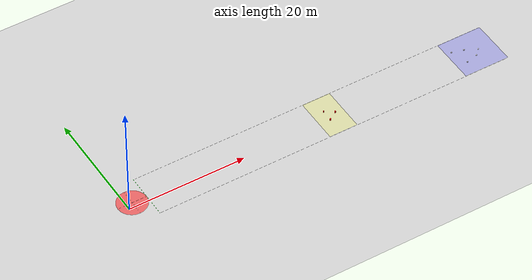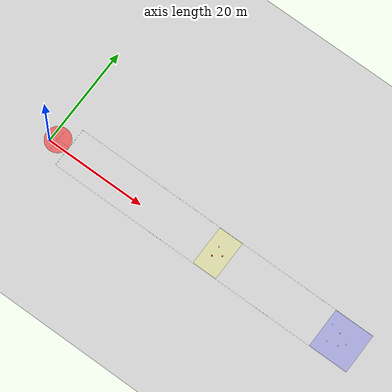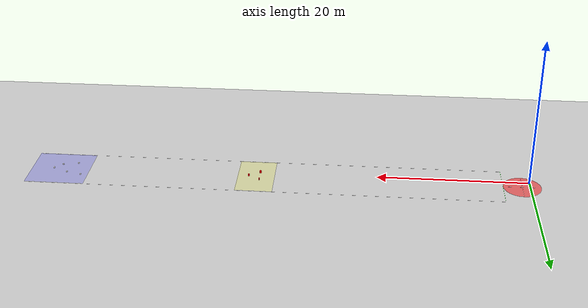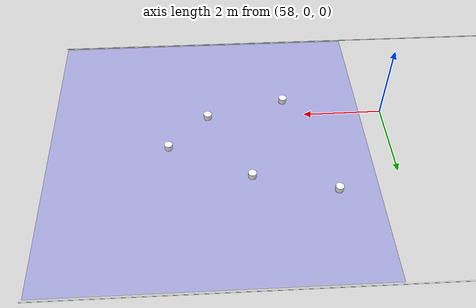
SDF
<?xml version="1.0" ?>
<sdf version="1.6">
  <world name="competition_field">

    <!-- 基础环境 -->
    <include>
      <uri>model://sun</uri>
    </include>
    <include>
      <uri>model://ground_plane</uri>
    </include>

    <!-- 赛道边界：宽 8m，Y 从 -3 到 5，X 从 3.5 到 66.5，平移 +3.51 使起降圈对齐 spawn -->
    <!-- 跑道中心 Y=1，飞机 spawn Gazebo(1.01,0.98)≈(1,1) 在跑道正中间/起降圈圆心 -->
    <model name="boundary_left">
      <static>true</static>
      <pose>35.01 5 0.001 0 0 0</pose>
      <link name="link">
        <collision name="collision">
          <geometry><box><size>63 0.02 0.01</size></box></geometry>
        </collision>
        <visual name="visual">
          <geometry><box><size>63 0.02 0.01</size></box></geometry>
          <material><ambient>1 1 1 1</ambient></material>
        </visual>
      </link>
    </model>

    <model name="boundary_right">
      <static>true</static>
      <pose>35.01 -3 0.001 0 0 0</pose>
      <link name="link">
        <collision name="collision">
          <geometry><box><size>63 0.02 0.01</size></box></geometry>
        </collision>
        <visual name="visual">
          <geometry><box><size>63 0.02 0.01</size></box></geometry>
          <material><ambient>1 1 1 1</ambient></material>
        </visual>
      </link>
    </model>

    <!-- 起飞线 X=0，横穿跑道 -->
    <model name="start_line">
      <static>true</static>
      <pose>3.51 1 0.001 0 0 0</pose>
      <link name="link">
        <collision name="collision">
          <geometry><box><size>0.02 8.1 0.01</size></box></geometry>
        </collision>
        <visual name="visual">
          <geometry><box><size>0.02 8.1 0.01</size></box></geometry>
          <material><ambient>0 1 0 1</ambient></material>
        </visual>
      </link>
    </model>

    <!-- 起降点 Φ5m = 半径 2.5m，圆心 Gazebo (-2.5, 1) — 起飞线后方 -->
    <model name="takeoff_landing_zone">
      <static>true</static>
      <pose>1.01 1 0.001 0 0 0</pose>
      <link name="link">
        <visual name="circle">
          <geometry><cylinder><radius>2.5</radius><length>0.01</length></cylinder></geometry>
          <material><ambient>1 0 0 0.5</ambient><diffuse>1 0 0 0.5</diffuse></material>
        </visual>
        <visual name="cross_h">
          <geometry><box><size>0.02 5.1 0.01</size></box></geometry>
          <material><ambient>1 1 1 1</ambient></material>
        </visual>
        <visual name="cross_v">
          <geometry><box><size>5.1 0.02 0.01</size></box></geometry>
          <material><ambient>1 1 1 1</ambient></material>
        </visual>
      </link>
    </model>

    <!-- 投放区标记 黄色半透明 X=30~35，宽 ~8m -->
    <model name="drop_zone">
      <static>true</static>
      <pose>36.01 1 0.001 0 0 0</pose>
      <link name="link">
        <visual name="visual">
          <geometry><box><size>4.9 7.9 0.01</size></box></geometry>
          <material><ambient>1 1 0 0.2</ambient></material>
        </visual>
      </link>
    </model>

    <!-- 侦察区标记 蓝色半透明 X≈59~66，宽 ~8m -->
    <model name="recon_zone">
      <static>true</static>
      <pose>62.51 1 0.001 0 0 0</pose>
      <link name="link">
        <visual name="visual">
          <geometry><box><size>7.9 7.9 0.01</size></box></geometry>
          <material><ambient>0 0 1 0.2</ambient></material>
        </visual>
      </link>
    </model>

    <!-- ========== 投放目标：3 个红色圆柱桶 ========== -->
    <!-- 桶1：直径 0.15m，半径 0.075m，高 0.30m -->
    <!-- 桶2：直径 0.20m，半径 0.10m，高 0.30m -->
    <!-- 桶3：直径 0.25m，半径 0.125m，高 0.30m -->

    <model name="red_bucket_1">
      <static>true</static>
      <pose>35.51 2 0.15 0 0 0</pose>
      <link name="link">
        <collision name="collision">
          <geometry><cylinder><radius>0.075</radius><length>0.30</length></cylinder></geometry>
        </collision>
        <visual name="visual">
          <geometry><cylinder><radius>0.075</radius><length>0.30</length></cylinder></geometry>
          <material><ambient>1 0 0 1</ambient></material>
        </visual>
      </link>
    </model>

    <model name="red_bucket_2">
      <static>true</static>
      <pose>37.01 1 0.15 0 0 0</pose>
      <link name="link">
        <collision name="collision">
          <geometry><cylinder><radius>0.10</radius><length>0.30</length></cylinder></geometry>
        </collision>
        <visual name="visual">
          <geometry><cylinder><radius>0.10</radius><length>0.30</length></cylinder></geometry>
          <material><ambient>1 0 0 1</ambient></material>
        </visual>
      </link>
    </model>

    <model name="red_bucket_3">
      <static>true</static>
      <pose>35.51 0 0.15 0 0 0</pose>
      <link name="link">
        <collision name="collision">
          <geometry><cylinder><radius>0.125</radius><length>0.30</length></cylinder></geometry>
        </collision>
        <visual name="visual">
          <geometry><cylinder><radius>0.125</radius><length>0.30</length></cylinder></geometry>
          <material><ambient>1 0 0 1</ambient></material>
        </visual>
      </link>
    </model>

    <!-- ========== 侦察目标：5 个白色圆柱筒 ========== -->
    <!-- 高 0.15m，直径 0.20m（半径 0.10m） -->

    <model name="white_cylinder_1">
      <static>true</static>
      <pose>59.51 2.5 0.075 0 0 0</pose>
      <link name="link">
        <collision name="collision">
          <geometry><cylinder><radius>0.10</radius><length>0.15</length></cylinder></geometry>
        </collision>
        <visual name="visual">
          <geometry><cylinder><radius>0.10</radius><length>0.15</length></cylinder></geometry>
          <material><ambient>1 1 1 1</ambient></material>
        </visual>
      </link>
    </model>

    <model name="white_cylinder_2">
      <static>true</static>
      <pose>60.51 -0.5 0.075 0 0 0</pose>
      <link name="link">
        <collision name="collision">
          <geometry><cylinder><radius>0.10</radius><length>0.15</length></cylinder></geometry>
        </collision>
        <visual name="visual">
          <geometry><cylinder><radius>0.10</radius><length>0.15</length></cylinder></geometry>
          <material><ambient>1 1 1 1</ambient></material>
        </visual>
      </link>
    </model>

    <model name="white_cylinder_3">
      <static>true</static>
      <pose>61.51 2 0.075 0 0 0</pose>
      <link name="link">
        <collision name="collision">
          <geometry><cylinder><radius>0.10</radius><length>0.15</length></cylinder></geometry>
        </collision>
        <visual name="visual">
          <geometry><cylinder><radius>0.10</radius><length>0.15</length></cylinder></geometry>
          <material><ambient>1 1 1 1</ambient></material>
        </visual>
      </link>
    </model>

    <model name="white_cylinder_4">
      <static>true</static>
      <pose>62.51 0 0.075 0 0 0</pose>
      <link name="link">
        <collision name="collision">
          <geometry><cylinder><radius>0.10</radius><length>0.15</length></cylinder></geometry>
        </collision>
        <visual name="visual">
          <geometry><cylinder><radius>0.10</radius><length>0.15</length></cylinder></geometry>
          <material><ambient>1 1 1 1</ambient></material>
        </visual>
      </link>
    </model>

    <model name="white_cylinder_5">
      <static>true</static>
      <pose>63.51 1 0.075 0 0 0</pose>
      <link name="link">
        <collision name="collision">
          <geometry><cylinder><radius>0.10</radius><length>0.15</length></cylinder></geometry>
        </collision>
        <visual name="visual">
          <geometry><cylinder><radius>0.10</radius><length>0.15</length></cylinder></geometry>
          <material><ambient>1 1 1 1</ambient></material>
        </visual>
      </link>
    </model>

    <!-- 必须加载 gazebo_ros_state 插件，发布 /model_states -->
    <plugin name="gazebo_ros_state" filename="libgazebo_ros_state.so"/>

  </world>
</sdf>
